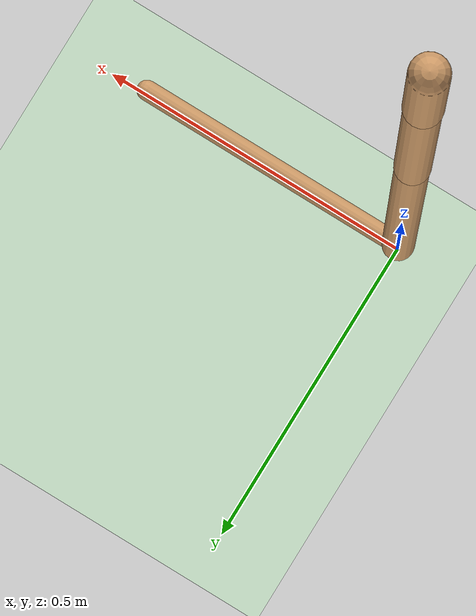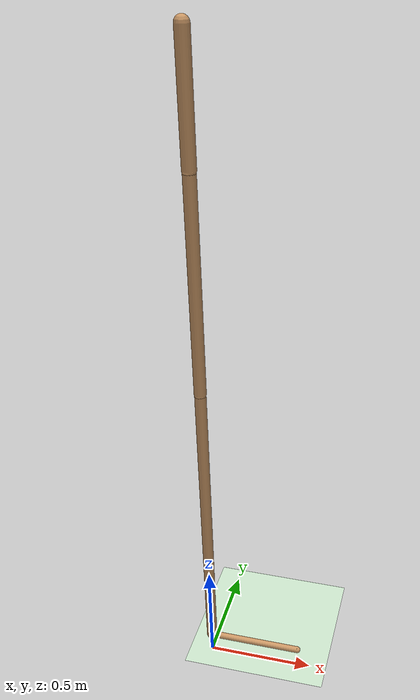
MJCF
<mujoco model="walker2d">
  <compiler angle="degree" inertiafromgeom="true" />
  <default>
    <joint armature="0.01" damping=".1" limited="true" />
    <geom conaffinity="0" condim="3" contype="1" density="1000" friction=".7 .1 .1" rgba="0.8 0.6 .4 1" />
  </default>
  <option integrator="RK4" timestep="0.002" />
  <worldbody>
    <light cutoff="100" diffuse="1 1 1" dir="-0 0 -1.3" directional="true" exponent="1" pos="0 0 1.3" specular=".1 .1 .1" />
    <geom conaffinity="1" condim="3" name="floor" pos="0 0 0" rgba="0.8 0.9 0.8 1" size="40 40 40" type="plane" material="MatPlane" />
    <body name="torso" pos="0 0 2.673558658361435">
      <camera name="track" mode="trackcom" pos="0 -5 -1.25" xyaxes="1 0 0 0 0 1" />
      <joint armature="0" axis="1 0 0" damping="0" limited="false" name="rootx" pos="0 0 -1.25" stiffness="0" type="slide" />
      <joint armature="0" axis="0 0 1" damping="0" limited="false" name="rootz" pos="0 0 -1.25" ref="1.25" stiffness="0" type="slide" />
      <joint armature="0" axis="0 1 0" damping="0" limited="false" name="rooty" pos="0 0 0" stiffness="0" type="hinge" />
      <geom friction="0.9" name="torso_geom" size="0.028047192841768265 0.24016043543815613" type="capsule" />
      <body name="thigh" pos="0 0 -0.24016043543815613">
        <joint axis="0 -1 0" name="thigh_joint" pos="0 0 0" range="-150 0" type="hinge" />
        <site name="torso_thigh_site" pos="0 0 0" size="0.01" type="sphere" rgba="1 0 0 0.5" />
        <geom friction="0.9" pos="0 0 -0.4622580409049988" name="thigh_geom" size="0.02628376893699169 0.4622580409049988" type="capsule" />
        <body name="leg" pos="0 0 -1.6289571523666382">
          <joint axis="0 -1 0" name="leg_joint" pos="0 0 0.7044410705566406" range="-150 0" type="hinge" />
          <site name="thigh_leg_site" pos="0 0 0.25" size="0.01" type="sphere" rgba="1 0 0 0.5" />
          <geom friction="0.9" name="leg_geom" size="0.024848738685250282 0.7044410705566406" type="capsule" />
          <body name="foot" pos="0.4381196200847626 0 -0.8044410705566406">
            <joint axis="0 -1 0" name="foot_joint" pos="-0.4381196200847626 0 0.1" range="-45 45" type="hinge" />
            <site name="leg_foot_site" pos="-0.2 0 0.1" size="0.01" type="sphere" rgba="1 0 0 0.5" />
            <geom friction="0.9" pos="-0.2190598100423813 0 0.1" quat="0.70710678118654757 0 -0.70710678118654746 0" name="foot_geom" size="0.015616705641150475 0.2190598100423813" type="capsule" />
          </body>
        </body>
      </body>

      <body name="thigh_left" pos="0 0 -0.24016043543815613">
        <joint axis="0 -1 0" name="thigh_left_joint" pos="0 0 0" range="-150 0" type="hinge" />
        <site name="torso_thigh_left_site" pos="0 0 0" size="0.01" type="sphere" rgba="1 0 0 0.5" />
        <geom friction="0.9" name="thigh_left_geom" rgba=".7 .3 .6 1" size="0.02628376893699169 0.4622580409049988" pos="0 0 -0.4622580409049988" type="capsule" />
        <body name="leg_left" pos="0 0 -1.6289571523666382">
          <joint axis="0 -1 0" name="leg_left_joint" pos="0 0 0.7044410705566406" range="-150 0" type="hinge" />
          <site name="thigh_leg_left_site" pos="0 0 0.25" size="0.01" type="sphere" rgba="1 0 0 0.5" />
          <geom friction="0.9" name="leg_left_geom" rgba=".7 .3 .6 1" size="0.024848738685250282 0.7044410705566406" type="capsule" />
          <body name="foot_left" pos="0.4381196200847626 0 -0.8044410705566406">
            <joint axis="0 -1 0" name="foot_left_joint" pos="-0.4381196200847626 0 0.1" range="-45 45" type="hinge" />
            <site name="leg_foot_left_site" pos="-0.2 0 0.1" size="0.01" type="sphere" rgba="1 0 0 0.5" />
            <geom friction="1.9" name="foot_left_geom" rgba=".7 .3 .6 1" size="0.015616705641150475 0.2190598100423813" pos="-0.2190598100423813 0 0.1" type="capsule" quat="0.70710678118654757 0 -0.70710678118654746 0" />
          </body>
        </body>
      </body>
    </body>
  </worldbody>
  <actuator>

    <motor ctrllimited="true" ctrlrange="-1.0 1.0" gear="56.77239670799117" joint="thigh_joint" />
    <motor ctrllimited="true" ctrlrange="-1.0 1.0" gear="108.74101314361566" joint="leg_joint" />
    <motor ctrllimited="true" ctrlrange="-1.0 1.0" gear="14.840176107108213" joint="foot_joint" />
    <motor ctrllimited="true" ctrlrange="-1.0 1.0" gear="56.77239670799117" joint="thigh_left_joint" />
    <motor ctrllimited="true" ctrlrange="-1.0 1.0" gear="108.74101314361566" joint="leg_left_joint" />
    <motor ctrllimited="true" ctrlrange="-1.0 1.0" gear="14.840176107108213" joint="foot_left_joint" />

  </actuator>
    <asset>
        <texture type="skybox" builtin="gradient" rgb1=".4 .5 .6" rgb2="0 0 0" width="100" height="100" />
        <texture builtin="flat" height="1278" mark="cross" markrgb="1 1 1" name="texgeom" random="0.01" rgb1="0.8 0.6 0.4" rgb2="0.8 0.6 0.4" type="cube" width="127" />
        <texture builtin="checker" height="100" name="texplane" rgb1="0 0 0" rgb2="0.8 0.8 0.8" type="2d" width="100" />
        <material name="MatPlane" reflectance="0.5" shininess="1" specular="1" texrepeat="60 60" texture="texplane" />
        <material name="geom" texture="texgeom" texuniform="true" />
    </asset>

  <sensor>
    <force site="torso_thigh_site" name="torso_thigh_sensor" />
    <force site="thigh_leg_site" name="thigh_leg_sensor" />
    <force site="leg_foot_site" name="leg_foot_sensor" />
    <force site="torso_thigh_left_site" name="torso_thigh_left_sensor" />
    <force site="thigh_leg_left_site" name="thigh_leg_left_sensor" />
    <force site="leg_foot_left_site" name="leg_foot_left_sensor" />
  </sensor>
</mujoco>
